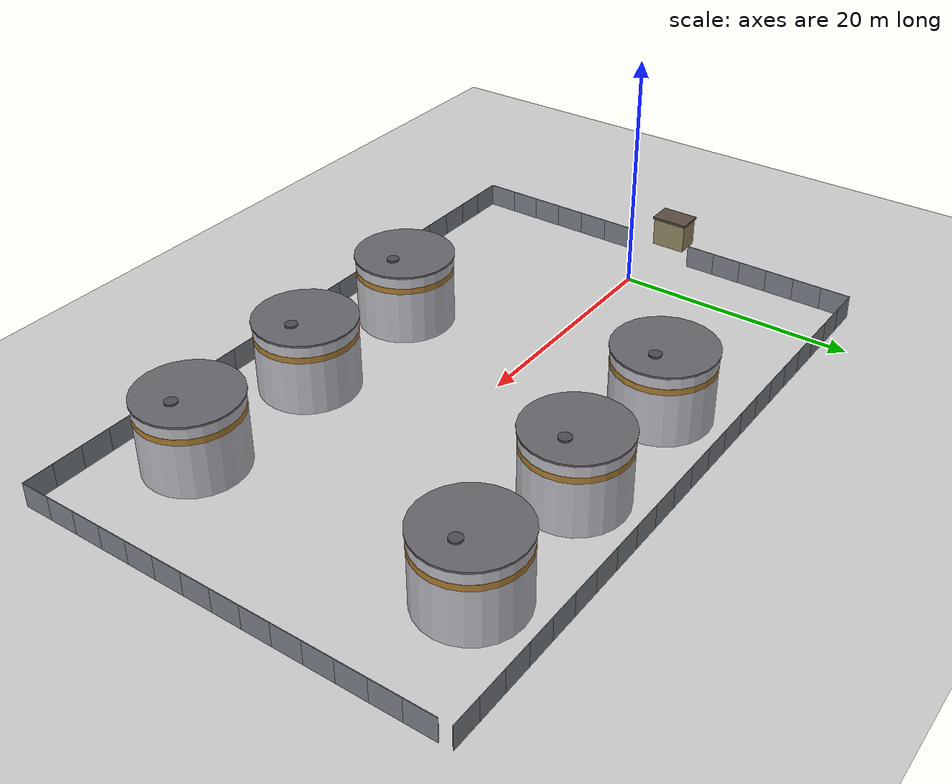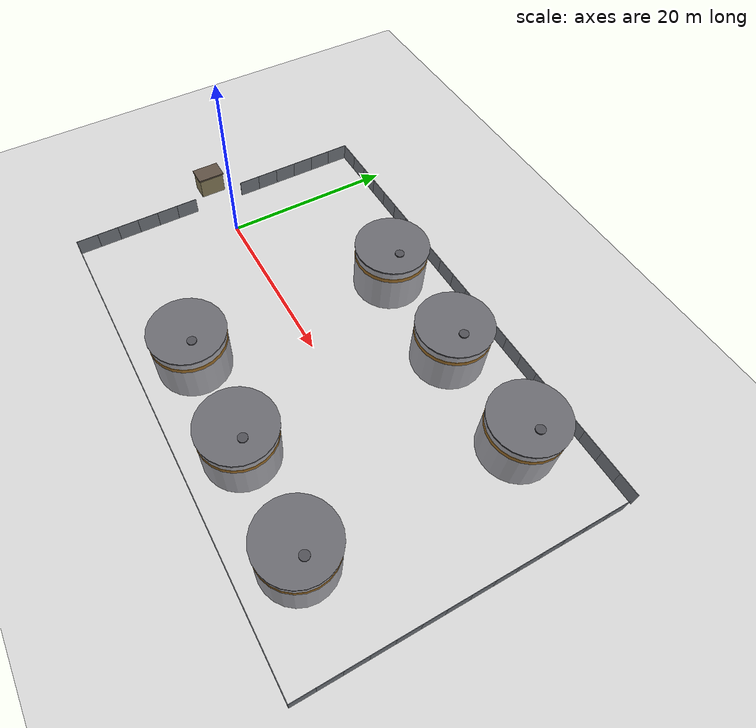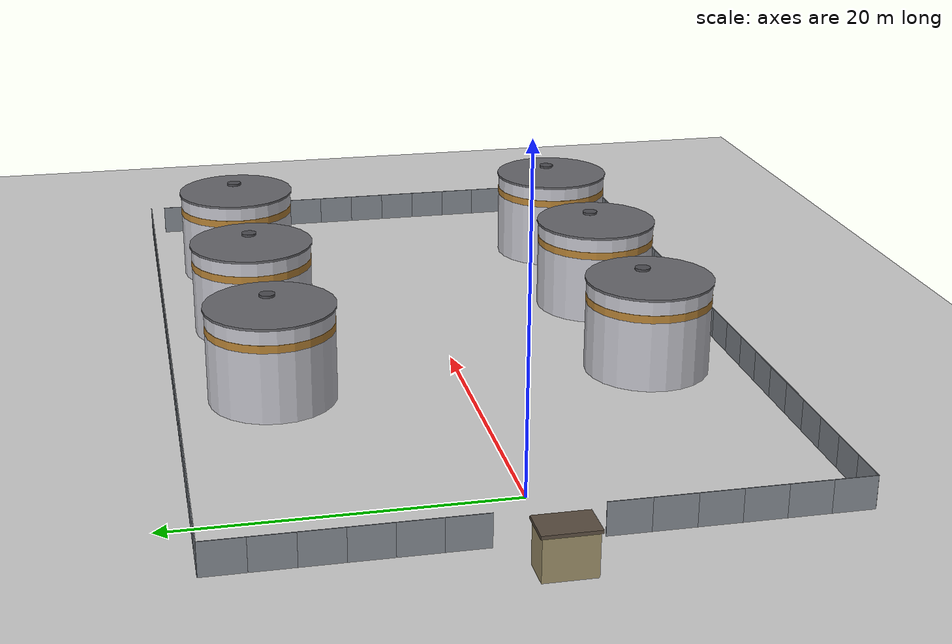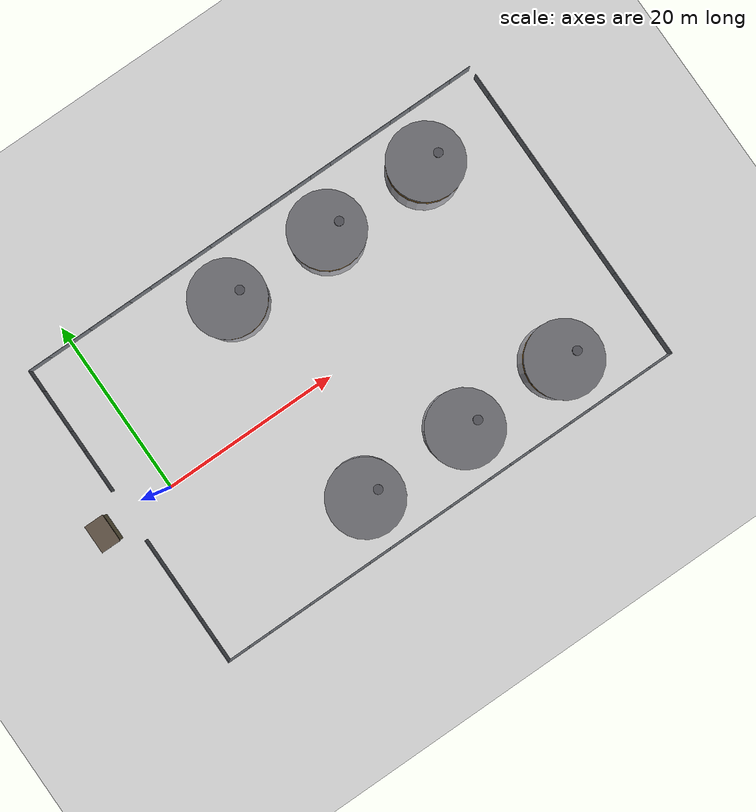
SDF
<?xml version="1.0" ?>
<sdf version="1.6">
  <world name="tank_farm">

    <!-- Physics -->
    <physics name="default_physics" default="0" type="ode">
      <max_step_size>0.004</max_step_size>
      <real_time_factor>1.0</real_time_factor>
      <real_time_update_rate>250</real_time_update_rate>
    </physics>

    <!-- Scene -->
    <scene>
      <ambient>0.5 0.5 0.5 1</ambient>
      <background>0.75 0.78 0.82 1</background>
      <shadows>1</shadows>
      <grid>false</grid>
    </scene>

    <!-- Sun -->
    <light name="sun" type="directional">
      <cast_shadows>1</cast_shadows>
      <pose>15 0 30 0 0 0</pose>
      <diffuse>0.85 0.85 0.82 1</diffuse>
      <specular>0.2 0.2 0.2 1</specular>
      <direction>-0.4 0.3 -1.0</direction>
    </light>

    <!-- Fill light -->
    <light name="fill" type="directional">
      <cast_shadows>0</cast_shadows>
      <pose>-10 0 20 0 0 0</pose>
      <diffuse>0.3 0.3 0.35 1</diffuse>
      <specular>0.05 0.05 0.05 1</specular>
      <direction>0.5 -0.3 -1.0</direction>
    </light>

    <!-- GROUND PLANE — 70m × 45m to accommodate larger tanks and patrol      -->
    <model name="ground_plane">
      <static>true</static>
      <link name="link">
        <collision name="collision">
          <geometry>
            <plane>
              <normal>0 0 1</normal>
              <size>120 45</size>
            </plane>
          </geometry>
          <surface>
            <friction>
              <ode>
                <mu>0.9</mu>
                <mu2>0.9</mu2>
              </ode>
            </friction>
          </surface>
        </collision>
        <visual name="visual">
          <geometry>
            <plane>
              <normal>0 0 1</normal>
              <size>120 45</size>
            </plane>
          </geometry>
          <material>
            <script>
              <uri>file:///home/evg/field_robots_lab/install/field_robots_worlds/share/field_robots_worlds/materials/scripts/pipeline_materials.material</uri>
              <uri>file:///home/evg/field_robots_lab/install/field_robots_worlds/share/field_robots_worlds/materials/textures</uri>
              <name>PipelineWorlds/DirtGround</name>
            </script>
          </material>
        </visual>
      </link>
    </model>

    <!-- STORAGE TANKS — 6 cylindrical AST, 8m diameter × 6m height          -->
    <!-- Layout: 2 columns (Y=±12) × 3 rows (X=16, 28, 40)                   -->

    <!-- Tank 1: (X=16, Y=12) -->
    <model name="tank_1">
      <static>true</static>
      <pose>16 12 3.0 0 0 0</pose>
      <link name="link">
        <collision name="body">
          <geometry><cylinder><radius>4.0</radius><length>6.0</length></cylinder></geometry>
        </collision>
        <visual name="body">
          <geometry><cylinder><radius>4.0</radius><length>6.0</length></cylinder></geometry>
          <material>
            <ambient>0.65 0.65 0.7 1</ambient>
            <diffuse>0.75 0.75 0.78 1</diffuse>
            <specular>0.3 0.3 0.3 1</specular>
          </material>
        </visual>
        <visual name="cap">
          <pose>0 0 3.05 0 0 0</pose>
          <geometry><cylinder><radius>4.1</radius><length>0.15</length></cylinder></geometry>
          <material><ambient>0.35 0.35 0.38 1</ambient><diffuse>0.4 0.4 0.42 1</diffuse></material>
        </visual>
        <visual name="manhole">
          <pose>1.5 0 3.18 0 0 0</pose>
          <geometry><cylinder><radius>0.5</radius><length>0.2</length></cylinder></geometry>
          <material><ambient>0.25 0.25 0.27 1</ambient><diffuse>0.3 0.3 0.32 1</diffuse></material>
        </visual>
        <visual name="label_band">
          <pose>0 0 1.8 0 0 0</pose>
          <geometry><cylinder><radius>4.02</radius><length>0.5</length></cylinder></geometry>
          <material><ambient>0.6 0.4 0.15 1</ambient><diffuse>0.7 0.5 0.2 1</diffuse></material>
        </visual>
      </link>
    </model>

    <!-- Tank 2: (X=28, Y=12) -->
    <model name="tank_2">
      <static>true</static>
      <pose>28 12 3.0 0 0 0</pose>
      <link name="link">
        <collision name="body">
          <geometry><cylinder><radius>4.0</radius><length>6.0</length></cylinder></geometry>
        </collision>
        <visual name="body">
          <geometry><cylinder><radius>4.0</radius><length>6.0</length></cylinder></geometry>
          <material>
            <ambient>0.65 0.65 0.7 1</ambient>
            <diffuse>0.75 0.75 0.78 1</diffuse>
            <specular>0.3 0.3 0.3 1</specular>
          </material>
        </visual>
        <visual name="cap">
          <pose>0 0 3.05 0 0 0</pose>
          <geometry><cylinder><radius>4.1</radius><length>0.15</length></cylinder></geometry>
          <material><ambient>0.35 0.35 0.38 1</ambient><diffuse>0.4 0.4 0.42 1</diffuse></material>
        </visual>
        <visual name="manhole">
          <pose>1.5 0 3.18 0 0 0</pose>
          <geometry><cylinder><radius>0.5</radius><length>0.2</length></cylinder></geometry>
          <material><ambient>0.25 0.25 0.27 1</ambient><diffuse>0.3 0.3 0.32 1</diffuse></material>
        </visual>
        <visual name="label_band">
          <pose>0 0 1.8 0 0 0</pose>
          <geometry><cylinder><radius>4.02</radius><length>0.5</length></cylinder></geometry>
          <material><ambient>0.6 0.4 0.15 1</ambient><diffuse>0.7 0.5 0.2 1</diffuse></material>
        </visual>
      </link>
    </model>

    <!-- Tank 3: (X=40, Y=12) -->
    <model name="tank_3">
      <static>true</static>
      <pose>40 12 3.0 0 0 0</pose>
      <link name="link">
        <collision name="body">
          <geometry><cylinder><radius>4.0</radius><length>6.0</length></cylinder></geometry>
        </collision>
        <visual name="body">
          <geometry><cylinder><radius>4.0</radius><length>6.0</length></cylinder></geometry>
          <material>
            <ambient>0.65 0.65 0.7 1</ambient>
            <diffuse>0.75 0.75 0.78 1</diffuse>
            <specular>0.3 0.3 0.3 1</specular>
          </material>
        </visual>
        <visual name="cap">
          <pose>0 0 3.05 0 0 0</pose>
          <geometry><cylinder><radius>4.1</radius><length>0.15</length></cylinder></geometry>
          <material><ambient>0.35 0.35 0.38 1</ambient><diffuse>0.4 0.4 0.42 1</diffuse></material>
        </visual>
        <visual name="manhole">
          <pose>1.5 0 3.18 0 0 0</pose>
          <geometry><cylinder><radius>0.5</radius><length>0.2</length></cylinder></geometry>
          <material><ambient>0.25 0.25 0.27 1</ambient><diffuse>0.3 0.3 0.32 1</diffuse></material>
        </visual>
        <visual name="label_band">
          <pose>0 0 1.8 0 0 0</pose>
          <geometry><cylinder><radius>4.02</radius><length>0.5</length></cylinder></geometry>
          <material><ambient>0.6 0.4 0.15 1</ambient><diffuse>0.7 0.5 0.2 1</diffuse></material>
        </visual>
      </link>
    </model>

    <!-- Tank 4: (X=16, Y=-12) -->
    <model name="tank_4">
      <static>true</static>
      <pose>16 -12 3.0 0 0 0</pose>
      <link name="link">
        <collision name="body">
          <geometry><cylinder><radius>4.0</radius><length>6.0</length></cylinder></geometry>
        </collision>
        <visual name="body">
          <geometry><cylinder><radius>4.0</radius><length>6.0</length></cylinder></geometry>
          <material>
            <ambient>0.65 0.65 0.7 1</ambient>
            <diffuse>0.75 0.75 0.78 1</diffuse>
            <specular>0.3 0.3 0.3 1</specular>
          </material>
        </visual>
        <visual name="cap">
          <pose>0 0 3.05 0 0 0</pose>
          <geometry><cylinder><radius>4.1</radius><length>0.15</length></cylinder></geometry>
          <material><ambient>0.35 0.35 0.38 1</ambient><diffuse>0.4 0.4 0.42 1</diffuse></material>
        </visual>
        <visual name="manhole">
          <pose>1.5 0 3.18 0 0 0</pose>
          <geometry><cylinder><radius>0.5</radius><length>0.2</length></cylinder></geometry>
          <material><ambient>0.25 0.25 0.27 1</ambient><diffuse>0.3 0.3 0.32 1</diffuse></material>
        </visual>
        <visual name="label_band">
          <pose>0 0 1.8 0 0 0</pose>
          <geometry><cylinder><radius>4.02</radius><length>0.5</length></cylinder></geometry>
          <material><ambient>0.6 0.4 0.15 1</ambient><diffuse>0.7 0.5 0.2 1</diffuse></material>
        </visual>
      </link>
    </model>

    <!-- Tank 5: (X=28, Y=-12) -->
    <model name="tank_5">
      <static>true</static>
      <pose>28 -12 3.0 0 0 0</pose>
      <link name="link">
        <collision name="body">
          <geometry><cylinder><radius>4.0</radius><length>6.0</length></cylinder></geometry>
        </collision>
        <visual name="body">
          <geometry><cylinder><radius>4.0</radius><length>6.0</length></cylinder></geometry>
          <material>
            <ambient>0.65 0.65 0.7 1</ambient>
            <diffuse>0.75 0.75 0.78 1</diffuse>
            <specular>0.3 0.3 0.3 1</specular>
          </material>
        </visual>
        <visual name="cap">
          <pose>0 0 3.05 0 0 0</pose>
          <geometry><cylinder><radius>4.1</radius><length>0.15</length></cylinder></geometry>
          <material><ambient>0.35 0.35 0.38 1</ambient><diffuse>0.4 0.4 0.42 1</diffuse></material>
        </visual>
        <visual name="manhole">
          <pose>1.5 0 3.18 0 0 0</pose>
          <geometry><cylinder><radius>0.5</radius><length>0.2</length></cylinder></geometry>
          <material><ambient>0.25 0.25 0.27 1</ambient><diffuse>0.3 0.3 0.32 1</diffuse></material>
        </visual>
        <visual name="label_band">
          <pose>0 0 1.8 0 0 0</pose>
          <geometry><cylinder><radius>4.02</radius><length>0.5</length></cylinder></geometry>
          <material><ambient>0.6 0.4 0.15 1</ambient><diffuse>0.7 0.5 0.2 1</diffuse></material>
        </visual>
      </link>
    </model>

    <!-- Tank 6: (X=40, Y=-12) -->
    <model name="tank_6">
      <static>true</static>
      <pose>40 -12 3.0 0 0 0</pose>
      <link name="link">
        <collision name="body">
          <geometry><cylinder><radius>4.0</radius><length>6.0</length></cylinder></geometry>
        </collision>
        <visual name="body">
          <geometry><cylinder><radius>4.0</radius><length>6.0</length></cylinder></geometry>
          <material>
            <ambient>0.65 0.65 0.7 1</ambient>
            <diffuse>0.75 0.75 0.78 1</diffuse>
            <specular>0.3 0.3 0.3 1</specular>
          </material>
        </visual>
        <visual name="cap">
          <pose>0 0 3.05 0 0 0</pose>
          <geometry><cylinder><radius>4.1</radius><length>0.15</length></cylinder></geometry>
          <material><ambient>0.35 0.35 0.38 1</ambient><diffuse>0.4 0.4 0.42 1</diffuse></material>
        </visual>
        <visual name="manhole">
          <pose>1.5 0 3.18 0 0 0</pose>
          <geometry><cylinder><radius>0.5</radius><length>0.2</length></cylinder></geometry>
          <material><ambient>0.25 0.25 0.27 1</ambient><diffuse>0.3 0.3 0.32 1</diffuse></material>
        </visual>
        <visual name="label_band">
          <pose>0 0 1.8 0 0 0</pose>
          <geometry><cylinder><radius>4.02</radius><length>0.5</length></cylinder></geometry>
          <material><ambient>0.6 0.4 0.15 1</ambient><diffuse>0.7 0.5 0.2 1</diffuse></material>
        </visual>
      </link>
    </model>

    <!-- PERIMETER FENCE — chain link panels, 2.5m wide × 2.0m tall          -->
    <!-- Bounds: X=[-5, 50], Y=[-18, 18] (55m × 36m)                         -->
    <!-- Gate gap on west side (X=-5) from Y=-2.5 to Y=2.5                   -->

    <!-- South fence (Y=-18), 22 panels along X from -3.75 to 48.75 -->
    <model name="fence_s_01"><static>true</static><pose>-3.75 -18 1.0 0 0 0</pose><link name="l"><collision name="c"><geometry><box><size>2.5 0.05 2.0</size></box></geometry></collision><visual name="v"><geometry><box><size>2.5 0.05 2.0</size></box></geometry><material><ambient>0.4 0.42 0.45 1</ambient><diffuse>0.5 0.52 0.55 1</diffuse></material></visual></link></model>
    <model name="fence_s_02"><static>true</static><pose>-1.25 -18 1.0 0 0 0</pose><link name="l"><collision name="c"><geometry><box><size>2.5 0.05 2.0</size></box></geometry></collision><visual name="v"><geometry><box><size>2.5 0.05 2.0</size></box></geometry><material><ambient>0.4 0.42 0.45 1</ambient><diffuse>0.5 0.52 0.55 1</diffuse></material></visual></link></model>
    <model name="fence_s_03"><static>true</static><pose>1.25 -18 1.0 0 0 0</pose><link name="l"><collision name="c"><geometry><box><size>2.5 0.05 2.0</size></box></geometry></collision><visual name="v"><geometry><box><size>2.5 0.05 2.0</size></box></geometry><material><ambient>0.4 0.42 0.45 1</ambient><diffuse>0.5 0.52 0.55 1</diffuse></material></visual></link></model>
    <model name="fence_s_04"><static>true</static><pose>3.75 -18 1.0 0 0 0</pose><link name="l"><collision name="c"><geometry><box><size>2.5 0.05 2.0</size></box></geometry></collision><visual name="v"><geometry><box><size>2.5 0.05 2.0</size></box></geometry><material><ambient>0.4 0.42 0.45 1</ambient><diffuse>0.5 0.52 0.55 1</diffuse></material></visual></link></model>
    <model name="fence_s_05"><static>true</static><pose>6.25 -18 1.0 0 0 0</pose><link name="l"><collision name="c"><geometry><box><size>2.5 0.05 2.0</size></box></geometry></collision><visual name="v"><geometry><box><size>2.5 0.05 2.0</size></box></geometry><material><ambient>0.4 0.42 0.45 1</ambient><diffuse>0.5 0.52 0.55 1</diffuse></material></visual></link></model>
    <model name="fence_s_06"><static>true</static><pose>8.75 -18 1.0 0 0 0</pose><link name="l"><collision name="c"><geometry><box><size>2.5 0.05 2.0</size></box></geometry></collision><visual name="v"><geometry><box><size>2.5 0.05 2.0</size></box></geometry><material><ambient>0.4 0.42 0.45 1</ambient><diffuse>0.5 0.52 0.55 1</diffuse></material></visual></link></model>
    <model name="fence_s_07"><static>true</static><pose>11.25 -18 1.0 0 0 0</pose><link name="l"><collision name="c"><geometry><box><size>2.5 0.05 2.0</size></box></geometry></collision><visual name="v"><geometry><box><size>2.5 0.05 2.0</size></box></geometry><material><ambient>0.4 0.42 0.45 1</ambient><diffuse>0.5 0.52 0.55 1</diffuse></material></visual></link></model>
    <model name="fence_s_08"><static>true</static><pose>13.75 -18 1.0 0 0 0</pose><link name="l"><collision name="c"><geometry><box><size>2.5 0.05 2.0</size></box></geometry></collision><visual name="v"><geometry><box><size>2.5 0.05 2.0</size></box></geometry><material><ambient>0.4 0.42 0.45 1</ambient><diffuse>0.5 0.52 0.55 1</diffuse></material></visual></link></model>
    <model name="fence_s_09"><static>true</static><pose>16.25 -18 1.0 0 0 0</pose><link name="l"><collision name="c"><geometry><box><size>2.5 0.05 2.0</size></box></geometry></collision><visual name="v"><geometry><box><size>2.5 0.05 2.0</size></box></geometry><material><ambient>0.4 0.42 0.45 1</ambient><diffuse>0.5 0.52 0.55 1</diffuse></material></visual></link></model>
    <model name="fence_s_10"><static>true</static><pose>18.75 -18 1.0 0 0 0</pose><link name="l"><collision name="c"><geometry><box><size>2.5 0.05 2.0</size></box></geometry></collision><visual name="v"><geometry><box><size>2.5 0.05 2.0</size></box></geometry><material><ambient>0.4 0.42 0.45 1</ambient><diffuse>0.5 0.52 0.55 1</diffuse></material></visual></link></model>
    <model name="fence_s_11"><static>true</static><pose>21.25 -18 1.0 0 0 0</pose><link name="l"><collision name="c"><geometry><box><size>2.5 0.05 2.0</size></box></geometry></collision><visual name="v"><geometry><box><size>2.5 0.05 2.0</size></box></geometry><material><ambient>0.4 0.42 0.45 1</ambient><diffuse>0.5 0.52 0.55 1</diffuse></material></visual></link></model>
    <model name="fence_s_12"><static>true</static><pose>23.75 -18 1.0 0 0 0</pose><link name="l"><collision name="c"><geometry><box><size>2.5 0.05 2.0</size></box></geometry></collision><visual name="v"><geometry><box><size>2.5 0.05 2.0</size></box></geometry><material><ambient>0.4 0.42 0.45 1</ambient><diffuse>0.5 0.52 0.55 1</diffuse></material></visual></link></model>
    <model name="fence_s_13"><static>true</static><pose>26.25 -18 1.0 0 0 0</pose><link name="l"><collision name="c"><geometry><box><size>2.5 0.05 2.0</size></box></geometry></collision><visual name="v"><geometry><box><size>2.5 0.05 2.0</size></box></geometry><material><ambient>0.4 0.42 0.45 1</ambient><diffuse>0.5 0.52 0.55 1</diffuse></material></visual></link></model>
    <model name="fence_s_14"><static>true</static><pose>28.75 -18 1.0 0 0 0</pose><link name="l"><collision name="c"><geometry><box><size>2.5 0.05 2.0</size></box></geometry></collision><visual name="v"><geometry><box><size>2.5 0.05 2.0</size></box></geometry><material><ambient>0.4 0.42 0.45 1</ambient><diffuse>0.5 0.52 0.55 1</diffuse></material></visual></link></model>
    <model name="fence_s_15"><static>true</static><pose>31.25 -18 1.0 0 0 0</pose><link name="l"><collision name="c"><geometry><box><size>2.5 0.05 2.0</size></box></geometry></collision><visual name="v"><geometry><box><size>2.5 0.05 2.0</size></box></geometry><material><ambient>0.4 0.42 0.45 1</ambient><diffuse>0.5 0.52 0.55 1</diffuse></material></visual></link></model>
    <model name="fence_s_16"><static>true</static><pose>33.75 -18 1.0 0 0 0</pose><link name="l"><collision name="c"><geometry><box><size>2.5 0.05 2.0</size></box></geometry></collision><visual name="v"><geometry><box><size>2.5 0.05 2.0</size></box></geometry><material><ambient>0.4 0.42 0.45 1</ambient><diffuse>0.5 0.52 0.55 1</diffuse></material></visual></link></model>
    <model name="fence_s_17"><static>true</static><pose>36.25 -18 1.0 0 0 0</pose><link name="l"><collision name="c"><geometry><box><size>2.5 0.05 2.0</size></box></geometry></collision><visual name="v"><geometry><box><size>2.5 0.05 2.0</size></box></geometry><material><ambient>0.4 0.42 0.45 1</ambient><diffuse>0.5 0.52 0.55 1</diffuse></material></visual></link></model>
    <model name="fence_s_18"><static>true</static><pose>38.75 -18 1.0 0 0 0</pose><link name="l"><collision name="c"><geometry><box><size>2.5 0.05 2.0</size></box></geometry></collision><visual name="v"><geometry><box><size>2.5 0.05 2.0</size></box></geometry><material><ambient>0.4 0.42 0.45 1</ambient><diffuse>0.5 0.52 0.55 1</diffuse></material></visual></link></model>
    <model name="fence_s_19"><static>true</static><pose>41.25 -18 1.0 0 0 0</pose><link name="l"><collision name="c"><geometry><box><size>2.5 0.05 2.0</size></box></geometry></collision><visual name="v"><geometry><box><size>2.5 0.05 2.0</size></box></geometry><material><ambient>0.4 0.42 0.45 1</ambient><diffuse>0.5 0.52 0.55 1</diffuse></material></visual></link></model>
    <model name="fence_s_20"><static>true</static><pose>43.75 -18 1.0 0 0 0</pose><link name="l"><collision name="c"><geometry><box><size>2.5 0.05 2.0</size></box></geometry></collision><visual name="v"><geometry><box><size>2.5 0.05 2.0</size></box></geometry><material><ambient>0.4 0.42 0.45 1</ambient><diffuse>0.5 0.52 0.55 1</diffuse></material></visual></link></model>
    <model name="fence_s_21"><static>true</static><pose>46.25 -18 1.0 0 0 0</pose><link name="l"><collision name="c"><geometry><box><size>2.5 0.05 2.0</size></box></geometry></collision><visual name="v"><geometry><box><size>2.5 0.05 2.0</size></box></geometry><material><ambient>0.4 0.42 0.45 1</ambient><diffuse>0.5 0.52 0.55 1</diffuse></material></visual></link></model>
    <model name="fence_s_22"><static>true</static><pose>48.75 -18 1.0 0 0 0</pose><link name="l"><collision name="c"><geometry><box><size>2.5 0.05 2.0</size></box></geometry></collision><visual name="v"><geometry><box><size>2.5 0.05 2.0</size></box></geometry><material><ambient>0.4 0.42 0.45 1</ambient><diffuse>0.5 0.52 0.55 1</diffuse></material></visual></link></model>

    <!-- North fence (Y=18), 22 panels -->
    <model name="fence_n_01"><static>true</static><pose>-3.75 18 1.0 0 0 0</pose><link name="l"><collision name="c"><geometry><box><size>2.5 0.05 2.0</size></box></geometry></collision><visual name="v"><geometry><box><size>2.5 0.05 2.0</size></box></geometry><material><ambient>0.4 0.42 0.45 1</ambient><diffuse>0.5 0.52 0.55 1</diffuse></material></visual></link></model>
    <model name="fence_n_02"><static>true</static><pose>-1.25 18 1.0 0 0 0</pose><link name="l"><collision name="c"><geometry><box><size>2.5 0.05 2.0</size></box></geometry></collision><visual name="v"><geometry><box><size>2.5 0.05 2.0</size></box></geometry><material><ambient>0.4 0.42 0.45 1</ambient><diffuse>0.5 0.52 0.55 1</diffuse></material></visual></link></model>
    <model name="fence_n_03"><static>true</static><pose>1.25 18 1.0 0 0 0</pose><link name="l"><collision name="c"><geometry><box><size>2.5 0.05 2.0</size></box></geometry></collision><visual name="v"><geometry><box><size>2.5 0.05 2.0</size></box></geometry><material><ambient>0.4 0.42 0.45 1</ambient><diffuse>0.5 0.52 0.55 1</diffuse></material></visual></link></model>
    <model name="fence_n_04"><static>true</static><pose>3.75 18 1.0 0 0 0</pose><link name="l"><collision name="c"><geometry><box><size>2.5 0.05 2.0</size></box></geometry></collision><visual name="v"><geometry><box><size>2.5 0.05 2.0</size></box></geometry><material><ambient>0.4 0.42 0.45 1</ambient><diffuse>0.5 0.52 0.55 1</diffuse></material></visual></link></model>
    <model name="fence_n_05"><static>true</static><pose>6.25 18 1.0 0 0 0</pose><link name="l"><collision name="c"><geometry><box><size>2.5 0.05 2.0</size></box></geometry></collision><visual name="v"><geometry><box><size>2.5 0.05 2.0</size></box></geometry><material><ambient>0.4 0.42 0.45 1</ambient><diffuse>0.5 0.52 0.55 1</diffuse></material></visual></link></model>
    <model name="fence_n_06"><static>true</static><pose>8.75 18 1.0 0 0 0</pose><link name="l"><collision name="c"><geometry><box><size>2.5 0.05 2.0</size></box></geometry></collision><visual name="v"><geometry><box><size>2.5 0.05 2.0</size></box></geometry><material><ambient>0.4 0.42 0.45 1</ambient><diffuse>0.5 0.52 0.55 1</diffuse></material></visual></link></model>
    <model name="fence_n_07"><static>true</static><pose>11.25 18 1.0 0 0 0</pose><link name="l"><collision name="c"><geometry><box><size>2.5 0.05 2.0</size></box></geometry></collision><visual name="v"><geometry><box><size>2.5 0.05 2.0</size></box></geometry><material><ambient>0.4 0.42 0.45 1</ambient><diffuse>0.5 0.52 0.55 1</diffuse></material></visual></link></model>
    <model name="fence_n_08"><static>true</static><pose>13.75 18 1.0 0 0 0</pose><link name="l"><collision name="c"><geometry><box><size>2.5 0.05 2.0</size></box></geometry></collision><visual name="v"><geometry><box><size>2.5 0.05 2.0</size></box></geometry><material><ambient>0.4 0.42 0.45 1</ambient><diffuse>0.5 0.52 0.55 1</diffuse></material></visual></link></model>
    <model name="fence_n_09"><static>true</static><pose>16.25 18 1.0 0 0 0</pose><link name="l"><collision name="c"><geometry><box><size>2.5 0.05 2.0</size></box></geometry></collision><visual name="v"><geometry><box><size>2.5 0.05 2.0</size></box></geometry><material><ambient>0.4 0.42 0.45 1</ambient><diffuse>0.5 0.52 0.55 1</diffuse></material></visual></link></model>
    <model name="fence_n_10"><static>true</static><pose>18.75 18 1.0 0 0 0</pose><link name="l"><collision name="c"><geometry><box><size>2.5 0.05 2.0</size></box></geometry></collision><visual name="v"><geometry><box><size>2.5 0.05 2.0</size></box></geometry><material><ambient>0.4 0.42 0.45 1</ambient><diffuse>0.5 0.52 0.55 1</diffuse></material></visual></link></model>
    <model name="fence_n_11"><static>true</static><pose>21.25 18 1.0 0 0 0</pose><link name="l"><collision name="c"><geometry><box><size>2.5 0.05 2.0</size></box></geometry></collision><visual name="v"><geometry><box><size>2.5 0.05 2.0</size></box></geometry><material><ambient>0.4 0.42 0.45 1</ambient><diffuse>0.5 0.52 0.55 1</diffuse></material></visual></link></model>
    <model name="fence_n_12"><static>true</static><pose>23.75 18 1.0 0 0 0</pose><link name="l"><collision name="c"><geometry><box><size>2.5 0.05 2.0</size></box></geometry></collision><visual name="v"><geometry><box><size>2.5 0.05 2.0</size></box></geometry><material><ambient>0.4 0.42 0.45 1</ambient><diffuse>0.5 0.52 0.55 1</diffuse></material></visual></link></model>
    <model name="fence_n_13"><static>true</static><pose>26.25 18 1.0 0 0 0</pose><link name="l"><collision name="c"><geometry><box><size>2.5 0.05 2.0</size></box></geometry></collision><visual name="v"><geometry><box><size>2.5 0.05 2.0</size></box></geometry><material><ambient>0.4 0.42 0.45 1</ambient><diffuse>0.5 0.52 0.55 1</diffuse></material></visual></link></model>
    <model name="fence_n_14"><static>true</static><pose>28.75 18 1.0 0 0 0</pose><link name="l"><collision name="c"><geometry><box><size>2.5 0.05 2.0</size></box></geometry></collision><visual name="v"><geometry><box><size>2.5 0.05 2.0</size></box></geometry><material><ambient>0.4 0.42 0.45 1</ambient><diffuse>0.5 0.52 0.55 1</diffuse></material></visual></link></model>
    <model name="fence_n_15"><static>true</static><pose>31.25 18 1.0 0 0 0</pose><link name="l"><collision name="c"><geometry><box><size>2.5 0.05 2.0</size></box></geometry></collision><visual name="v"><geometry><box><size>2.5 0.05 2.0</size></box></geometry><material><ambient>0.4 0.42 0.45 1</ambient><diffuse>0.5 0.52 0.55 1</diffuse></material></visual></link></model>
    <model name="fence_n_16"><static>true</static><pose>33.75 18 1.0 0 0 0</pose><link name="l"><collision name="c"><geometry><box><size>2.5 0.05 2.0</size></box></geometry></collision><visual name="v"><geometry><box><size>2.5 0.05 2.0</size></box></geometry><material><ambient>0.4 0.42 0.45 1</ambient><diffuse>0.5 0.52 0.55 1</diffuse></material></visual></link></model>
    <model name="fence_n_17"><static>true</static><pose>36.25 18 1.0 0 0 0</pose><link name="l"><collision name="c"><geometry><box><size>2.5 0.05 2.0</size></box></geometry></collision><visual name="v"><geometry><box><size>2.5 0.05 2.0</size></box></geometry><material><ambient>0.4 0.42 0.45 1</ambient><diffuse>0.5 0.52 0.55 1</diffuse></material></visual></link></model>
    <model name="fence_n_18"><static>true</static><pose>38.75 18 1.0 0 0 0</pose><link name="l"><collision name="c"><geometry><box><size>2.5 0.05 2.0</size></box></geometry></collision><visual name="v"><geometry><box><size>2.5 0.05 2.0</size></box></geometry><material><ambient>0.4 0.42 0.45 1</ambient><diffuse>0.5 0.52 0.55 1</diffuse></material></visual></link></model>
    <model name="fence_n_19"><static>true</static><pose>41.25 18 1.0 0 0 0</pose><link name="l"><collision name="c"><geometry><box><size>2.5 0.05 2.0</size></box></geometry></collision><visual name="v"><geometry><box><size>2.5 0.05 2.0</size></box></geometry><material><ambient>0.4 0.42 0.45 1</ambient><diffuse>0.5 0.52 0.55 1</diffuse></material></visual></link></model>
    <model name="fence_n_20"><static>true</static><pose>43.75 18 1.0 0 0 0</pose><link name="l"><collision name="c"><geometry><box><size>2.5 0.05 2.0</size></box></geometry></collision><visual name="v"><geometry><box><size>2.5 0.05 2.0</size></box></geometry><material><ambient>0.4 0.42 0.45 1</ambient><diffuse>0.5 0.52 0.55 1</diffuse></material></visual></link></model>
    <model name="fence_n_21"><static>true</static><pose>46.25 18 1.0 0 0 0</pose><link name="l"><collision name="c"><geometry><box><size>2.5 0.05 2.0</size></box></geometry></collision><visual name="v"><geometry><box><size>2.5 0.05 2.0</size></box></geometry><material><ambient>0.4 0.42 0.45 1</ambient><diffuse>0.5 0.52 0.55 1</diffuse></material></visual></link></model>
    <model name="fence_n_22"><static>true</static><pose>48.75 18 1.0 0 0 0</pose><link name="l"><collision name="c"><geometry><box><size>2.5 0.05 2.0</size></box></geometry></collision><visual name="v"><geometry><box><size>2.5 0.05 2.0</size></box></geometry><material><ambient>0.4 0.42 0.45 1</ambient><diffuse>0.5 0.52 0.55 1</diffuse></material></visual></link></model>

    <!-- East fence (X=50), 14 panels along Y from -16.75 to 16.75 -->
    <model name="fence_e_01"><static>true</static><pose>50 -16.75 1.0 0 0 1.5708</pose><link name="l"><collision name="c"><geometry><box><size>2.5 0.05 2.0</size></box></geometry></collision><visual name="v"><geometry><box><size>2.5 0.05 2.0</size></box></geometry><material><ambient>0.4 0.42 0.45 1</ambient><diffuse>0.5 0.52 0.55 1</diffuse></material></visual></link></model>
    <model name="fence_e_02"><static>true</static><pose>50 -14.25 1.0 0 0 1.5708</pose><link name="l"><collision name="c"><geometry><box><size>2.5 0.05 2.0</size></box></geometry></collision><visual name="v"><geometry><box><size>2.5 0.05 2.0</size></box></geometry><material><ambient>0.4 0.42 0.45 1</ambient><diffuse>0.5 0.52 0.55 1</diffuse></material></visual></link></model>
    <model name="fence_e_03"><static>true</static><pose>50 -11.75 1.0 0 0 1.5708</pose><link name="l"><collision name="c"><geometry><box><size>2.5 0.05 2.0</size></box></geometry></collision><visual name="v"><geometry><box><size>2.5 0.05 2.0</size></box></geometry><material><ambient>0.4 0.42 0.45 1</ambient><diffuse>0.5 0.52 0.55 1</diffuse></material></visual></link></model>
    <model name="fence_e_04"><static>true</static><pose>50 -9.25 1.0 0 0 1.5708</pose><link name="l"><collision name="c"><geometry><box><size>2.5 0.05 2.0</size></box></geometry></collision><visual name="v"><geometry><box><size>2.5 0.05 2.0</size></box></geometry><material><ambient>0.4 0.42 0.45 1</ambient><diffuse>0.5 0.52 0.55 1</diffuse></material></visual></link></model>
    <model name="fence_e_05"><static>true</static><pose>50 -6.75 1.0 0 0 1.5708</pose><link name="l"><collision name="c"><geometry><box><size>2.5 0.05 2.0</size></box></geometry></collision><visual name="v"><geometry><box><size>2.5 0.05 2.0</size></box></geometry><material><ambient>0.4 0.42 0.45 1</ambient><diffuse>0.5 0.52 0.55 1</diffuse></material></visual></link></model>
    <model name="fence_e_06"><static>true</static><pose>50 -4.25 1.0 0 0 1.5708</pose><link name="l"><collision name="c"><geometry><box><size>2.5 0.05 2.0</size></box></geometry></collision><visual name="v"><geometry><box><size>2.5 0.05 2.0</size></box></geometry><material><ambient>0.4 0.42 0.45 1</ambient><diffuse>0.5 0.52 0.55 1</diffuse></material></visual></link></model>
    <model name="fence_e_07"><static>true</static><pose>50 -1.75 1.0 0 0 1.5708</pose><link name="l"><collision name="c"><geometry><box><size>2.5 0.05 2.0</size></box></geometry></collision><visual name="v"><geometry><box><size>2.5 0.05 2.0</size></box></geometry><material><ambient>0.4 0.42 0.45 1</ambient><diffuse>0.5 0.52 0.55 1</diffuse></material></visual></link></model>
    <model name="fence_e_08"><static>true</static><pose>50 0.75 1.0 0 0 1.5708</pose><link name="l"><collision name="c"><geometry><box><size>2.5 0.05 2.0</size></box></geometry></collision><visual name="v"><geometry><box><size>2.5 0.05 2.0</size></box></geometry><material><ambient>0.4 0.42 0.45 1</ambient><diffuse>0.5 0.52 0.55 1</diffuse></material></visual></link></model>
    <model name="fence_e_09"><static>true</static><pose>50 3.25 1.0 0 0 1.5708</pose><link name="l"><collision name="c"><geometry><box><size>2.5 0.05 2.0</size></box></geometry></collision><visual name="v"><geometry><box><size>2.5 0.05 2.0</size></box></geometry><material><ambient>0.4 0.42 0.45 1</ambient><diffuse>0.5 0.52 0.55 1</diffuse></material></visual></link></model>
    <model name="fence_e_10"><static>true</static><pose>50 5.75 1.0 0 0 1.5708</pose><link name="l"><collision name="c"><geometry><box><size>2.5 0.05 2.0</size></box></geometry></collision><visual name="v"><geometry><box><size>2.5 0.05 2.0</size></box></geometry><material><ambient>0.4 0.42 0.45 1</ambient><diffuse>0.5 0.52 0.55 1</diffuse></material></visual></link></model>
    <model name="fence_e_11"><static>true</static><pose>50 8.25 1.0 0 0 1.5708</pose><link name="l"><collision name="c"><geometry><box><size>2.5 0.05 2.0</size></box></geometry></collision><visual name="v"><geometry><box><size>2.5 0.05 2.0</size></box></geometry><material><ambient>0.4 0.42 0.45 1</ambient><diffuse>0.5 0.52 0.55 1</diffuse></material></visual></link></model>
    <model name="fence_e_12"><static>true</static><pose>50 10.75 1.0 0 0 1.5708</pose><link name="l"><collision name="c"><geometry><box><size>2.5 0.05 2.0</size></box></geometry></collision><visual name="v"><geometry><box><size>2.5 0.05 2.0</size></box></geometry><material><ambient>0.4 0.42 0.45 1</ambient><diffuse>0.5 0.52 0.55 1</diffuse></material></visual></link></model>
    <model name="fence_e_13"><static>true</static><pose>50 13.25 1.0 0 0 1.5708</pose><link name="l"><collision name="c"><geometry><box><size>2.5 0.05 2.0</size></box></geometry></collision><visual name="v"><geometry><box><size>2.5 0.05 2.0</size></box></geometry><material><ambient>0.4 0.42 0.45 1</ambient><diffuse>0.5 0.52 0.55 1</diffuse></material></visual></link></model>
    <model name="fence_e_14"><static>true</static><pose>50 15.75 1.0 0 0 1.5708</pose><link name="l"><collision name="c"><geometry><box><size>2.5 0.05 2.0</size></box></geometry></collision><visual name="v"><geometry><box><size>2.5 0.05 2.0</size></box></geometry><material><ambient>0.4 0.42 0.45 1</ambient><diffuse>0.5 0.52 0.55 1</diffuse></material></visual></link></model>

    <!-- West fence (X=-5), 12 panels with 5m gate gap at center (Y=-2.5 to 2.5) -->
    <model name="fence_w_01"><static>true</static><pose>-5 -16.75 1.0 0 0 1.5708</pose><link name="l"><collision name="c"><geometry><box><size>2.5 0.05 2.0</size></box></geometry></collision><visual name="v"><geometry><box><size>2.5 0.05 2.0</size></box></geometry><material><ambient>0.4 0.42 0.45 1</ambient><diffuse>0.5 0.52 0.55 1</diffuse></material></visual></link></model>
    <model name="fence_w_02"><static>true</static><pose>-5 -14.25 1.0 0 0 1.5708</pose><link name="l"><collision name="c"><geometry><box><size>2.5 0.05 2.0</size></box></geometry></collision><visual name="v"><geometry><box><size>2.5 0.05 2.0</size></box></geometry><material><ambient>0.4 0.42 0.45 1</ambient><diffuse>0.5 0.52 0.55 1</diffuse></material></visual></link></model>
    <model name="fence_w_03"><static>true</static><pose>-5 -11.75 1.0 0 0 1.5708</pose><link name="l"><collision name="c"><geometry><box><size>2.5 0.05 2.0</size></box></geometry></collision><visual name="v"><geometry><box><size>2.5 0.05 2.0</size></box></geometry><material><ambient>0.4 0.42 0.45 1</ambient><diffuse>0.5 0.52 0.55 1</diffuse></material></visual></link></model>
    <model name="fence_w_04"><static>true</static><pose>-5 -9.25 1.0 0 0 1.5708</pose><link name="l"><collision name="c"><geometry><box><size>2.5 0.05 2.0</size></box></geometry></collision><visual name="v"><geometry><box><size>2.5 0.05 2.0</size></box></geometry><material><ambient>0.4 0.42 0.45 1</ambient><diffuse>0.5 0.52 0.55 1</diffuse></material></visual></link></model>
    <model name="fence_w_05"><static>true</static><pose>-5 -6.75 1.0 0 0 1.5708</pose><link name="l"><collision name="c"><geometry><box><size>2.5 0.05 2.0</size></box></geometry></collision><visual name="v"><geometry><box><size>2.5 0.05 2.0</size></box></geometry><material><ambient>0.4 0.42 0.45 1</ambient><diffuse>0.5 0.52 0.55 1</diffuse></material></visual></link></model>
    <model name="fence_w_06"><static>true</static><pose>-5 -4.25 1.0 0 0 1.5708</pose><link name="l"><collision name="c"><geometry><box><size>2.5 0.05 2.0</size></box></geometry></collision><visual name="v"><geometry><box><size>2.5 0.05 2.0</size></box></geometry><material><ambient>0.4 0.42 0.45 1</ambient><diffuse>0.5 0.52 0.55 1</diffuse></material></visual></link></model>
    <!-- GATE gap from Y=-2.5 to Y=2.5 (5m wide) -->
    <model name="fence_w_07"><static>true</static><pose>-5 4.25 1.0 0 0 1.5708</pose><link name="l"><collision name="c"><geometry><box><size>2.5 0.05 2.0</size></box></geometry></collision><visual name="v"><geometry><box><size>2.5 0.05 2.0</size></box></geometry><material><ambient>0.4 0.42 0.45 1</ambient><diffuse>0.5 0.52 0.55 1</diffuse></material></visual></link></model>
    <model name="fence_w_08"><static>true</static><pose>-5 6.75 1.0 0 0 1.5708</pose><link name="l"><collision name="c"><geometry><box><size>2.5 0.05 2.0</size></box></geometry></collision><visual name="v"><geometry><box><size>2.5 0.05 2.0</size></box></geometry><material><ambient>0.4 0.42 0.45 1</ambient><diffuse>0.5 0.52 0.55 1</diffuse></material></visual></link></model>
    <model name="fence_w_09"><static>true</static><pose>-5 9.25 1.0 0 0 1.5708</pose><link name="l"><collision name="c"><geometry><box><size>2.5 0.05 2.0</size></box></geometry></collision><visual name="v"><geometry><box><size>2.5 0.05 2.0</size></box></geometry><material><ambient>0.4 0.42 0.45 1</ambient><diffuse>0.5 0.52 0.55 1</diffuse></material></visual></link></model>
    <model name="fence_w_10"><static>true</static><pose>-5 11.75 1.0 0 0 1.5708</pose><link name="l"><collision name="c"><geometry><box><size>2.5 0.05 2.0</size></box></geometry></collision><visual name="v"><geometry><box><size>2.5 0.05 2.0</size></box></geometry><material><ambient>0.4 0.42 0.45 1</ambient><diffuse>0.5 0.52 0.55 1</diffuse></material></visual></link></model>
    <model name="fence_w_11"><static>true</static><pose>-5 14.25 1.0 0 0 1.5708</pose><link name="l"><collision name="c"><geometry><box><size>2.5 0.05 2.0</size></box></geometry></collision><visual name="v"><geometry><box><size>2.5 0.05 2.0</size></box></geometry><material><ambient>0.4 0.42 0.45 1</ambient><diffuse>0.5 0.52 0.55 1</diffuse></material></visual></link></model>
    <model name="fence_w_12"><static>true</static><pose>-5 16.75 1.0 0 0 1.5708</pose><link name="l"><collision name="c"><geometry><box><size>2.5 0.05 2.0</size></box></geometry></collision><visual name="v"><geometry><box><size>2.5 0.05 2.0</size></box></geometry><material><ambient>0.4 0.42 0.45 1</ambient><diffuse>0.5 0.52 0.55 1</diffuse></material></visual></link></model>

    <!-- BASE STATION — operations building at gate                          -->
    <model name="base_station">
      <static>true</static>
      <pose>-8 0 1.25 0 0 0</pose>
      <link name="link">
        <collision name="c"><geometry><box><size>2.0 3.0 2.5</size></box></geometry></collision>
        <visual name="v">
          <geometry><box><size>2.0 3.0 2.5</size></box></geometry>
          <material>
            <ambient>0.5 0.45 0.35 1</ambient>
            <diffuse>0.6 0.55 0.4 1</diffuse>
          </material>
        </visual>
        <visual name="roof">
          <pose>0 0 1.35 0 0 0</pose>
          <geometry><box><size>2.2 3.2 0.2</size></box></geometry>
          <material>
            <ambient>0.3 0.25 0.2 1</ambient>
            <diffuse>0.35 0.3 0.25 1</diffuse>
          </material>
        </visual>
      </link>
    </model>

  </world>
</sdf>
